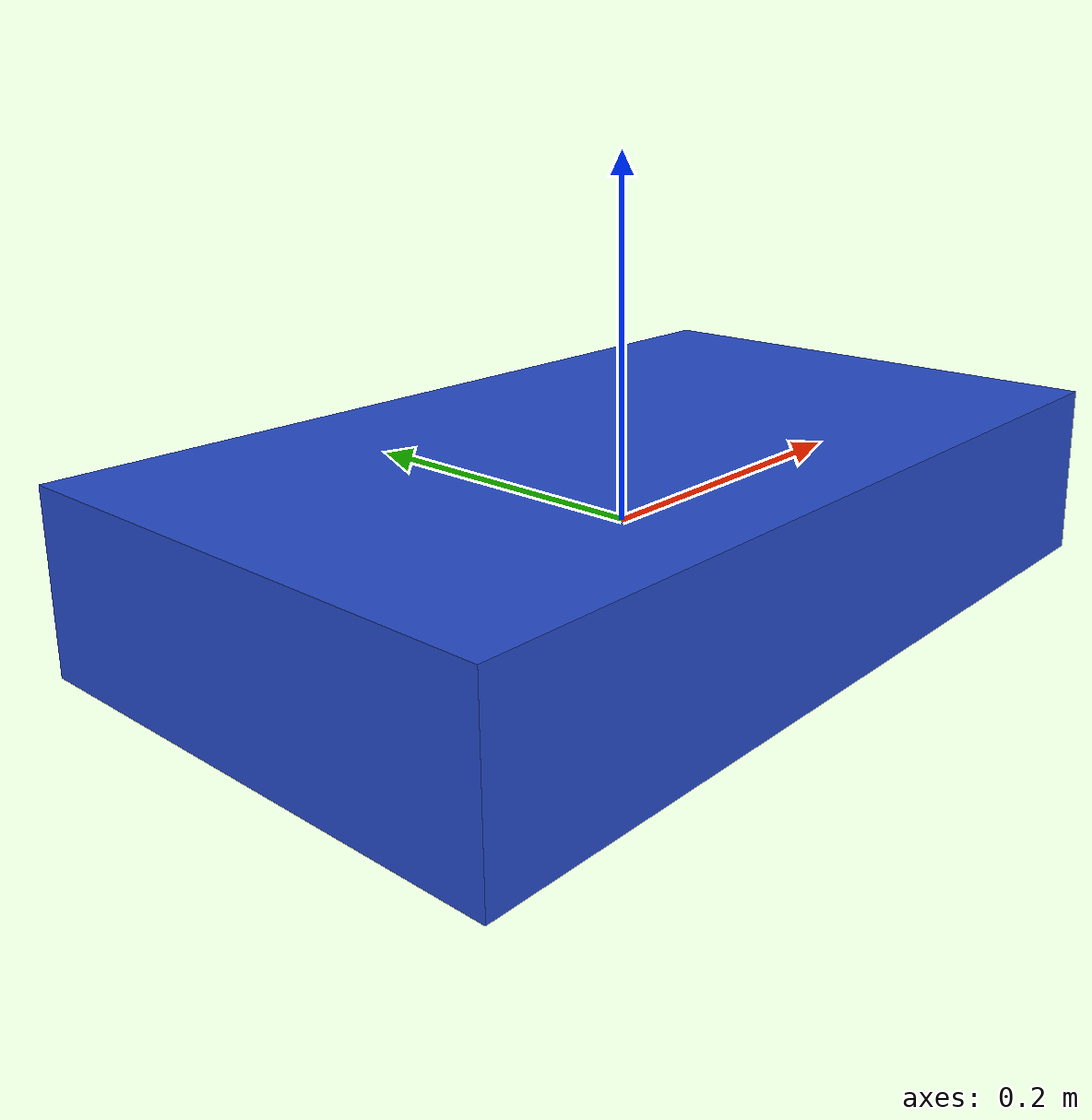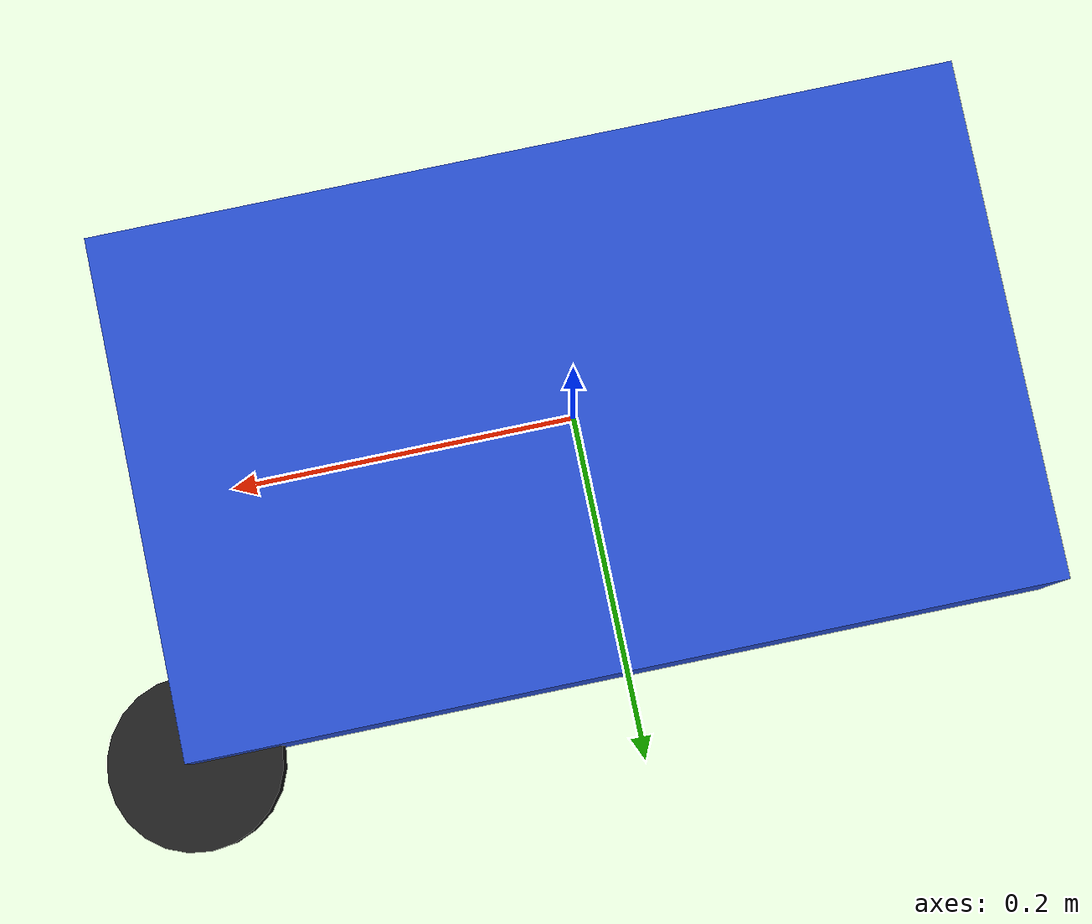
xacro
<robot name="four_wheel_robot" xmlns:xacro="http://www.ros.org/wiki/xacro">
  <!-- Main Body -->
  <link name="base_link">
    <visual>
      <geometry>
        <box size="0.5 0.3 0.1"/>
      </geometry>
      <material name="blue"/>
    </visual>
    <collision>
      <geometry>
        <box size="0.5 0.3 0.1"/>
      </geometry>
    </collision>
  </link>

  <!-- Wheels -->
  <xacro:property name="wheel_radius" value="0.05"/>
  <xacro:property name="wheel_width" value="0.02"/>

  <link name="front_left_wheel">
    <visual>
      <geometry>
        <cylinder radius="${wheel_radius}" length="${wheel_width}"/>
      </geometry>
      <material name="black"/>
    </visual>
    <collision>
      <geometry>
        <cylinder radius="${wheel_radius}" length="${wheel_width}"/>
      </geometry>
    </collision>
  </link>

  <!-- Define other wheels (front_right_wheel, rear_left_wheel, rear_right_wheel similarly) -->

  <!-- Joints for Wheels -->
  <joint name="front_left_wheel_joint" type="continuous">
    <parent link="base_link"/>
    <child link="front_left_wheel"/>
    <origin xyz="0.25 0.15 0"/>
    <axis xyz="0 1 0"/>
  </joint>
  <!-- Define other joints for the remaining wheels similarly -->
</robot>
